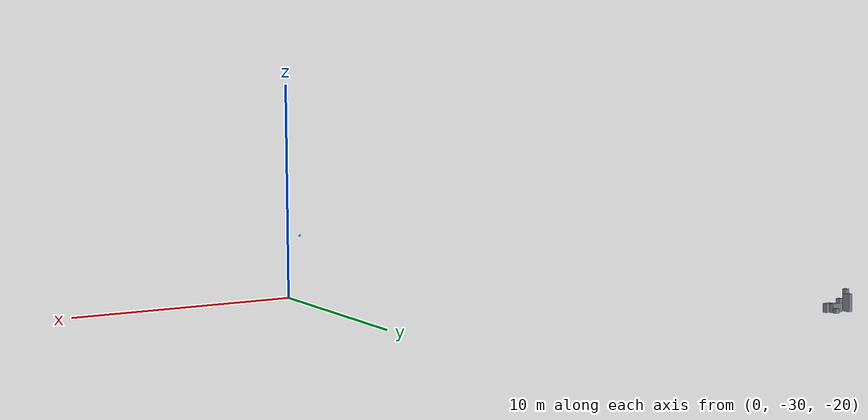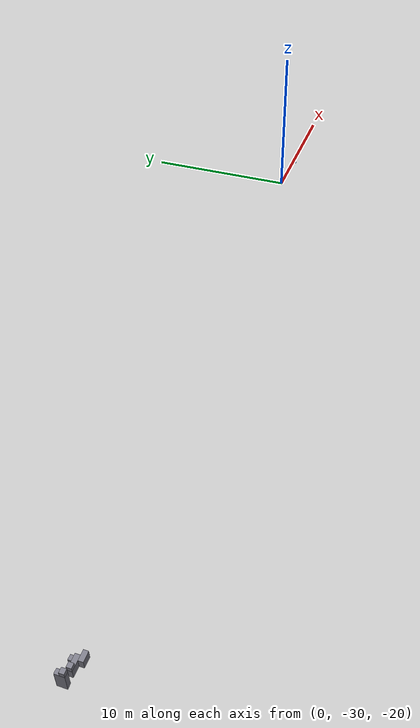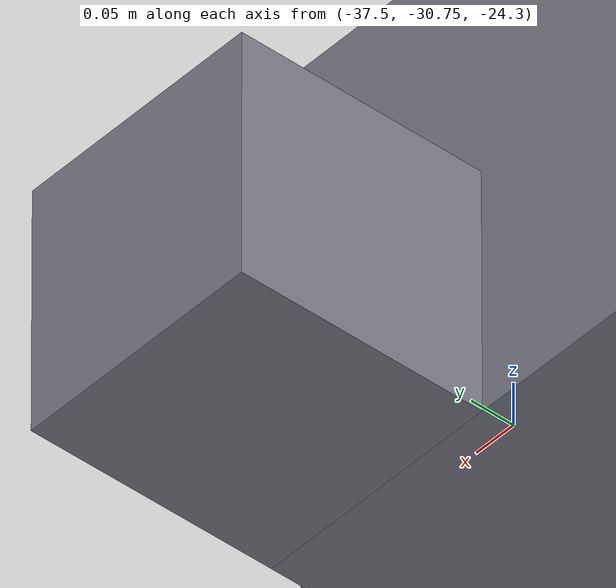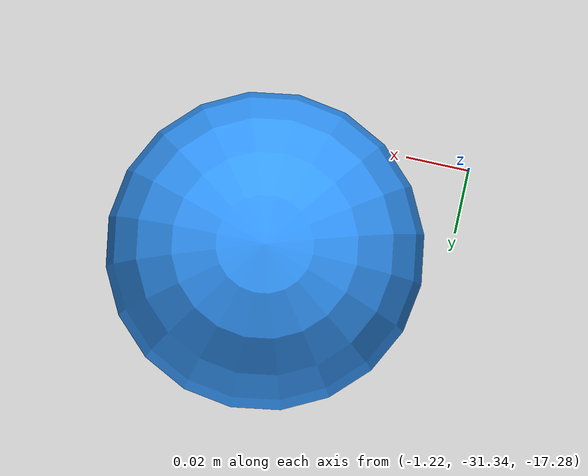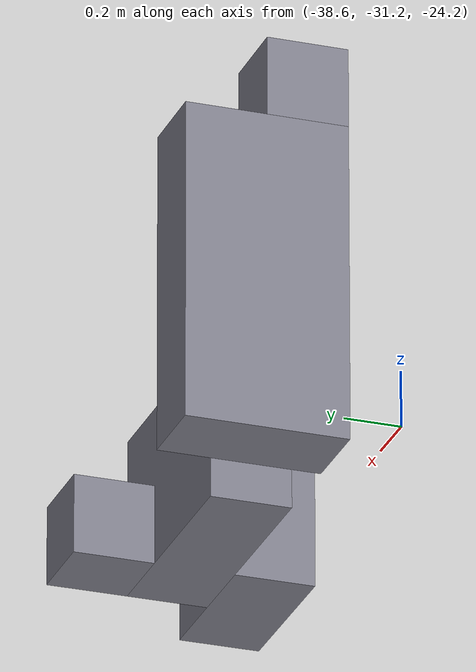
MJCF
<mujoco model="splat_collision">
  <compiler angle="radian"/>
  <option timestep="0.002"/>
  <visual><headlight ambient="0.4 0.4 0.4"/></visual>
  <asset>
    <!-- boxes need no assets -->
  </asset>
  <worldbody>
    <light pos="0 0 4" dir="0 0 -1"/>
    <geom name="vox0" type="box" pos="-38.4775 -30.7301 -23.7123" size="0.142419 0.284839 0.569677" rgba="0.5 0.5 0.55 1"/>
    <geom name="vox1" type="box" pos="-38.4775 -30.8725 -23.0002" size="0.142419 0.142419 0.142419" rgba="0.5 0.5 0.55 1"/>
    <geom name="vox2" type="box" pos="-37.6229 -30.8725 -23.9971" size="0.427258 0.142419 0.284839" rgba="0.5 0.5 0.55 1"/>
    <geom name="vox3" type="box" pos="-37.9078 -30.8725 -23.5699" size="0.142419 0.142419 0.142419" rgba="0.5 0.5 0.55 1"/>
    <geom name="vox4" type="box" pos="-37.1957 -31.1573 -23.9971" size="0.284839 0.142419 0.284839" rgba="0.5 0.5 0.55 1"/>
    <geom name="vox5" type="box" pos="-37.3381 -30.5877 -24.1395" size="0.142419 0.142419 0.142419" rgba="0.5 0.5 0.55 1"/>
    <body name="probe" pos="-1.16359 -31.2998 -17.2307">
      <freejoint/>
      <geom name="probe" type="sphere" size="0.05" density="300" rgba="0.2 0.6 1 1"/>
    </body>
  </worldbody>
</mujoco>
